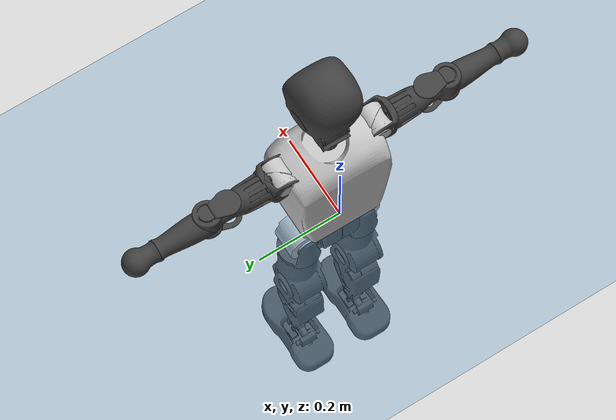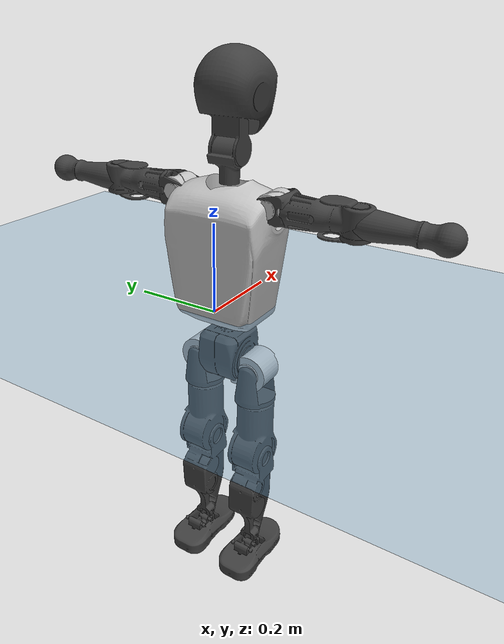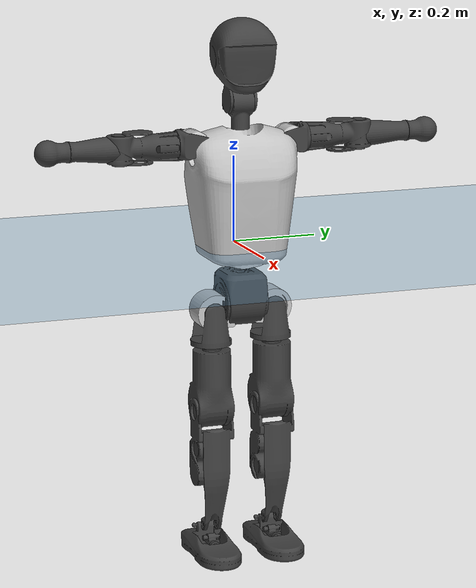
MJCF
<mujoco model="T1">
  <compiler angle="radian" assetdir="assets" balanceinertia="true" inertiafromgeom="false"/>

  <option timestep="0.005" density="1.2" viscosity="2e-05"/>

  <size nkey="1"/>

  <visual>
    <quality shadowsize="8192"/>
    <map shadowclip="0.5"/>
  </visual>

  <default>
    <default class="/">
      <joint armature="0.01" damping="0.01" frictionloss="0.1"/>
      <geom contype="0" conaffinity="0" group="1" solref="-1000 -80"/>
      <site size="0.01 0.005 0.005" group="5"/>
      <general forcelimited="true" biastype="affine" gainprm="25" biasprm="0 -25 -0.6"/>
      <default class="t1">
        <geom rgba="0.25 0.25 0.25 1"/>
        <default class="visual">
          <geom type="mesh" group="2"/>
        </default>
        <default class="collision">
          <geom group="3"/>
        </default>
        <default class="foot">
          <geom size="0.1115 0.05 0.015" type="box" condim="6" group="4" priority="1" solimp="0.015 1 0.015"/>
        </default>
        <default class="reward_collision_sphere">
          <geom group="5" rgba="1 0 0 1"/>
        </default>
      </default>
    </default>
  </default>

  <asset>
    <texture type="skybox" colorspace="auto" name="//unnamed_texture_0" builtin="gradient" rgb1="0.95 0.95 0.95" rgb2="0.95 0.95 0.95" width="100" height="600"/>
    <texture type="2d" colorspace="auto" name="texplane" builtin="checker" rgb1="0.345 0.575 0.748" rgb2="0.345 0.575 0.748" markrgb="1 1 1" width="512" height="512"/>
    <material name="MatPlane" class="/" texture="texplane" texuniform="true" texrepeat="2 2" specular="0.9"/>
    <mesh name="Trunk" class="/" file="Trunk.stl"/>
    <mesh name="H1" class="/" file="H1.stl"/>
    <mesh name="H2" class="/" file="H2.stl"/>
    <mesh name="AL1" class="/" file="AL1.stl"/>
    <mesh name="AL2" class="/" file="AL2.stl"/>
    <mesh name="AL3" class="/" file="AL3.stl"/>
    <mesh name="left_hand_link" class="/" file="left_hand_link.stl"/>
    <mesh name="AR1" class="/" file="AR1.stl"/>
    <mesh name="AR2" class="/" file="AR2.stl"/>
    <mesh name="AR3" class="/" file="AR3.stl"/>
    <mesh name="right_hand_link" class="/" file="right_hand_link.stl"/>
    <mesh name="Waist" class="/" file="Waist.stl"/>
    <mesh name="Hip_Pitch_Left" class="/" file="Hip_Pitch_Left.stl"/>
    <mesh name="Hip_Roll_Left" class="/" file="Hip_Roll_Left.stl"/>
    <mesh name="Hip_Yaw_Left" class="/" file="Hip_Yaw_Left.stl"/>
    <mesh name="Shank_Left" class="/" file="Shank_Left.stl"/>
    <mesh name="Ankle_Cross_Left" class="/" file="Ankle_Cross_Left.stl"/>
    <mesh name="left_foot_link" class="/" file="left_foot_link.stl"/>
    <mesh name="Hip_Pitch_Right" class="/" file="Hip_Pitch_Right.stl"/>
    <mesh name="Hip_Roll_Right" class="/" file="Hip_Roll_Right.stl"/>
    <mesh name="Hip_Yaw_Right" class="/" file="Hip_Yaw_Right.stl"/>
    <mesh name="Shank_Right" class="/" file="Shank_Right.stl"/>
    <mesh name="Ankle_Cross_Right" class="/" file="Ankle_Cross_Right.stl"/>
    <mesh name="right_foot_link" class="/" file="right_foot_link.stl"/>
  </asset>

  <worldbody>
    <geom name="floor" class="/" size="100 100 0.125" type="plane" group="0" material="MatPlane"/>
    <light name="toplight_shadow" class="/" pos="0 0 5" dir="0.0990148 0.0990148 -0.990148" type="directional" ambient="0.04 0.04 0.04" diffuse="0.55 0.55 0.55" specular="0.12 0.12 0.12"/>
    <light name="toplight_fill" class="/" pos="0 0 5" dir="0.0990148 0.0990148 -0.990148" type="directional" castshadow="false" ambient="0.04 0.04 0.04" diffuse="0.3 0.3 0.3" specular="0.08 0.08 0.08"/>
    <body name="trunk" childclass="t1" pos="-0.000122716 -0.000642012 0.00282986" quat="1 -1.16923e-05 5.37572e-06 -9.26032e-06">
      <inertial pos="0.0485862 -0.0037329 0.116304" quat="0.999953 0.00252004 -0.000483337 -0.00929797" mass="7.8004" diaginertia="0.0447034 0.00992703 0.0946912"/>
      <joint name="//unnamed_joint_0" type="free" armature="0" damping="0" frictionloss="0"/>
      <geom name="//unnamed_geom_1" class="visual" rgba="0.76 0.76 0.76 1" mesh="Trunk"/>
      <geom name="//unnamed_geom_2" class="collision" size="0.0662564 0.0883419 0.132513" pos="0.0518896 0 0.133831" type="box"/>
      <geom name="//unnamed_geom_3" class="reward_collision_sphere" size="0.101593" pos="0.0518896 0 0.111526"/>
      <geom name="//unnamed_geom_4" class="reward_collision_sphere" size="0.0132513" pos="0.0518896 0.0569644 0"/>
      <geom name="//unnamed_geom_5" class="reward_collision_sphere" size="0.0132513" pos="0.0518896 -0.0569644 0"/>
      <geom name="//unnamed_geom_6" class="reward_collision_sphere" size="0.0132513" pos="0.0518896 0.0717082 0.200747"/>
      <geom name="//unnamed_geom_7" class="reward_collision_sphere" size="0.0132513" pos="0.0518896 -0.0717082 0.200747"/>
      <site name="imu" pos="0.000144219 0.0131834 -0.00744594" size="0.00883419"/>
      <camera name="track" pos="0 -1.34034 0" quat="0.707107 0.707107 0 0" mode="trackcom"/>
      <camera name="ego_camera" pos="0.105509 0 0.468409" quat="-0.5 -0.5 0.5 0.5"/>
      <body name="H1" pos="0.0531599 -0.00304546 0.270035" quat="0.999999 -0.00102491 0.000294434 -0.000798492">
        <inertial pos="-0.00161193 -0.000292474 0.0655174" quat="0.761538 -0.0121713 0.00136916 0.648005" mass="0.295542" diaginertia="0.000113107 3.08549e-05 0.000256379"/>
        <joint name="AAHead_yaw" pos="0 0 0" axis="0.00384728 -0.00390678 0.999985" range="-1.53926 1.61071" armature="0.00905229" damping="0" frictionloss="0.0765117"/>
        <geom name="//unnamed_geom_8" class="visual" mesh="H1"/>
        <body name="H2" pos="-0.000560014 -0.00084976 0.0675192" quat="1 -0.000363866 -0.000675957 -0.000233334">
          <inertial pos="0.0042322 0.00291934 0.112768" quat="0.989705 0.094821 -0.0689621 -0.082075" mass="0.434859" diaginertia="0.000982474 0.00025616 0.00297145"/>
          <joint name="Head_pitch" pos="0 0 0" axis="0.0136395 -0.999906 -0.00167421" range="-1.22853 0.359094" armature="0.00870819" damping="0.00452606" frictionloss="0.0884614"/>
          <geom name="//unnamed_geom_9" class="visual" mesh="H2"/>
          <geom name="//unnamed_geom_10" class="collision" size="0.0706735" pos="0.00864827 0 0.122679"/>
          <geom name="//unnamed_geom_11" class="reward_collision_sphere" size="0.0795077" pos="0.0172965 0 0.111526"/>
        </body>
      </body>
      <body name="AL1" pos="0.0494121 0.0714388 0.241922" quat="1 5.47473e-05 0.00053735 0.000313946">
        <inertial pos="-8.26539e-05 0.0275156 -0.000236632" quat="0.498994 0.491435 -0.503323 0.506125" mass="0.348602" diaginertia="0.000622125 0.000169123 0.000490492"/>
        <joint name="Left_Shoulder_Pitch" pos="0 0 0" axis="-0.0136604 0.999907 -0.000262088" range="-3.26232 1.22466" armature="0.00746761" damping="0" frictionloss="0.0800147"/>
        <geom name="//unnamed_geom_12" class="visual" rgba="0.76 0.76 0.76 1" mesh="AL1"/>
        <body name="AL2" pos="-8.92674e-05 0.0314812 -0.00028872" quat="0.999999 0.00073105 -6.41481e-05 0.000932086">
          <inertial pos="0.0052349 0.027737 -0.000300762" quat="0.483775 0.519014 -0.480674 0.515305" mass="0.107006" diaginertia="0.000187124 4.57504e-05 0.00029218"/>
          <joint name="Left_Shoulder_Roll" pos="0 0 0" axis="-0.999987 0.00242381 -0.00447021" range="-1.57036 1.74746" armature="0.0100361" damping="0.0213171" frictionloss="0.0929772"/>
          <geom name="//unnamed_geom_13" class="visual" mesh="AL2"/>
          <body name="AL3" pos="-0.00184542 0.0389751 0.000239649" quat="0.999999 0.000216157 -0.00025917 -0.00123301">
            <inertial pos="0.00211104 0.0565377 0.00157467" quat="0.70163 0.712521 0.000494878 0.00528062" mass="0.71839" diaginertia="0.0063316 0.00180203 0.00108515"/>
            <joint name="Left_Elbow_Pitch" pos="0 0 0" axis="-0.00214305 -0.999997 -0.000707817" stiffness="0.0069931" range="-2.258 2.30845" armature="0.0100291" damping="0.00989366" frictionloss="0.0970193"/>
            <geom name="//unnamed_geom_14" class="visual" mesh="AL3"/>
            <geom name="//unnamed_geom_15" class="collision" size="0.0265026 0.0662564" pos="0 0.0335085 0" quat="0.707105 0.707108 0 0" type="cylinder"/>
            <geom name="//unnamed_geom_16" class="reward_collision_sphere" size="0.0318031"/>
            <body name="left_hand_link" pos="-0.00194853 0.100058 -0.00178628" quat="0.999999 -0.000767812 -0.000165706 0.000646183">
              <inertial pos="0.00108719 0.0762853 -0.000224532" quat="0.708203 0.706009 0.000251506 0.00014374" mass="0.220039" diaginertia="0.00406821 0.00114123 0.000359504"/>
              <joint name="Left_Elbow_Yaw" pos="0 0 0" axis="-0.0135215 0.00556951 0.999893" stiffness="0.00378267" range="-2.4835 0.0401254" armature="0.00770104" damping="0.000310743" frictionloss="0.0982152"/>
              <geom name="//unnamed_geom_17" class="visual" mesh="left_hand_link"/>
              <geom name="//unnamed_geom_18" class="collision" size="0.0265026 0.0772991" pos="0 0.0871221 0" quat="0.707105 0.707108 0 0" type="cylinder"/>
              <geom name="//unnamed_geom_19" class="reward_collision_sphere" size="0.0441709"/>
              <geom name="//unnamed_geom_20" class="reward_collision_sphere" size="0.0309197" pos="0 0.0737187 0"/>
              <geom name="//unnamed_geom_21" class="reward_collision_sphere" size="0.0309197" pos="0 0.144087 0"/>
            </body>
          </body>
        </body>
      </body>
      <body name="AR1" pos="0.0493732 -0.0675493 0.241339" quat="1 4.26202e-05 0.000390066 3.71101e-05">
        <inertial pos="-0.000468931 -0.0329904 -0.00034818" quat="0.503051 0.49521 -0.504892 0.49678" mass="0.376356" diaginertia="0.000661824 0.000170132 0.000506139"/>
        <joint name="Right_Shoulder_Pitch" pos="0 0 0" axis="-0.00225959 -0.999953 -0.0094128" range="-1.22835 3.35713" armature="0.009075" damping="0.016037" frictionloss="0.0785612"/>
        <geom name="//unnamed_geom_22" class="visual" rgba="0.76 0.76 0.76 1" mesh="AR1"/>
        <body name="AR2" pos="0.00154828 -0.0333166 -0.000189294" quat="1 9.50363e-05 -3.70714e-05 0.000132737">
          <inertial pos="0.0061971 -0.0251335 -0.000836982" quat="0.510359 0.486136 -0.515296 0.48752" mass="0.116865" diaginertia="0.000198483 4.67271e-05 0.000316564"/>
          <joint name="Right_Shoulder_Roll" pos="0 0 0" axis="-0.999964 0.00660514 -0.00524011" range="-1.72728 1.62798" armature="0.00918927" damping="0" frictionloss="0.100627"/>
          <geom name="//unnamed_geom_23" class="visual" mesh="AR2"/>
          <body name="AR3" pos="-0.00286472 -0.0412383 -0.00318116" quat="0.999999 0.000507325 -0.000511275 0.000730311">
            <inertial pos="-0.000823175 -0.0544736 -0.000720723" quat="0.702451 0.711716 0.00218542 -0.00421263" mass="0.740366" diaginertia="0.00632145 0.00176005 0.00108357"/>
            <joint name="Right_Elbow_Pitch" pos="0 0 0" axis="0.00229474 0.999997 -0.000411791" range="-2.32803 2.21477" armature="0.0090744" damping="0.00968055" frictionloss="0.087338"/>
            <geom name="//unnamed_geom_24" class="visual" mesh="AR3"/>
            <geom name="//unnamed_geom_25" class="collision" size="0.0265026 0.0662564" pos="0 -0.0335085 0" quat="0.707105 0.707108 0 0" type="cylinder"/>
            <geom name="//unnamed_geom_26" class="reward_collision_sphere" size="0.0318031"/>
            <body name="right_hand_link" pos="-0.000707964 -0.0982893 0.00090293" quat="1 -2.36037e-05 -3.13485e-05 -0.000136117">
              <inertial pos="0.0001032 -0.0732542 -0.00109556" quat="0.714021 0.70008 0.00111561 -0.00780638" mass="0.212728" diaginertia="0.00376551 0.00107464 0.000359655"/>
              <joint name="Right_Elbow_Yaw" pos="0 0 0" axis="-0.00814912 -0.0143153 0.999864" stiffness="0.000985646" range="0.0242366 2.49105" armature="0.00913464" damping="0.00762913" frictionloss="0.0927994"/>
              <geom name="//unnamed_geom_27" class="visual" mesh="right_hand_link"/>
              <geom name="//unnamed_geom_28" class="collision" size="0.0265026 0.0772991" pos="0 -0.0871221 0" quat="0.707105 0.707108 0 0" type="cylinder"/>
              <geom name="//unnamed_geom_29" class="reward_collision_sphere" size="0.0441709"/>
              <geom name="//unnamed_geom_30" class="reward_collision_sphere" size="0.0309197" pos="0 -0.0737187 0"/>
              <geom name="//unnamed_geom_31" class="reward_collision_sphere" size="0.0309197" pos="0 -0.144087 0"/>
            </body>
          </body>
        </body>
      </body>
      <body name="Waist" pos="0.0529611 -0.00219744 -0.128863" quat="0.999999 -0.000197715 -0.00166411 0.000390215">
        <inertial pos="0.000527216 -0.00380145 0.00733064" quat="0.983749 0.000620383 -0.179521 0.00309995" mass="1.8064" diaginertia="0.00257923 0.000702367 0.00790341"/>
        <joint name="Waist" pos="0 0 0" axis="-0.00710967 0.0130004 0.99989" stiffness="0.00778912" range="-1.57303 1.56728" armature="0.00909454" damping="0" frictionloss="0.0782924"/>
        <geom name="//unnamed_geom_32" class="visual" mesh="Waist"/>
        <body name="Hip_Pitch_Left" pos="0.00342113 0.0692789 0.00248365" quat="0.999999 0.0010593 -0.00074396 0.00092014">
          <inertial pos="0.000184618 -0.00575268 -0.0201876" quat="0.973873 0.226085 0.0206083 -0.00567766" mass="0.70153" diaginertia="0.000855394 0.000196999 0.00205474"/>
          <joint name="Left_Hip_Pitch" pos="0 0 0" axis="-0.00463092 0.999986 -0.00253441" range="-1.7804 1.58452" armature="0.00863119" damping="0.00595514" frictionloss="0.0944041"/>
          <geom name="//unnamed_geom_33" class="visual" rgba="0.76 0.76 0.76 1" mesh="Hip_Pitch_Left"/>
          <body name="Hip_Roll_Left" pos="0.00233632 0.00248153 -0.0200018" quat="1 -0.000455913 -8.85517e-05 -0.000599436">
            <inertial pos="-0.0013874 -0.00313132 -0.0598285" quat="0.700666 -0.00627818 -0.00735941 0.713424" mass="0.261048" diaginertia="0.000808223 0.000201234 0.000873036"/>
            <joint name="Left_Hip_Roll" pos="0 0 0" axis="-0.999972 0.00740236 0.00147" stiffness="0.00114867" range="-1.62449 0.250132" armature="0.00986946" damping="0.00835912" frictionloss="0.0925694"/>
            <geom name="//unnamed_geom_34" class="visual" mesh="Hip_Roll_Left"/>
            <geom name="//unnamed_geom_35" class="reward_collision_sphere" size="0.048588"/>
            <body name="Hip_Yaw_Left" pos="0.001179 0.00213151 -0.0892092" quat="0.999999 0.000827142 0.000743301 -0.000689117">
              <inertial pos="-0.00659709 -5.42148e-07 -0.101884" quat="0.694064 -0.0339918 -0.0300925 0.71848" mass="1.50832" diaginertia="0.0120289 0.00341538 0.00463521"/>
              <joint name="Left_Hip_Yaw" pos="0 0 0" axis="0.000502521 0.00823058 -0.999966" stiffness="0.00116077" range="-1.00958 0.961559" armature="0.00839002" damping="0.00994384" frictionloss="0.0972725"/>
              <geom name="//unnamed_geom_36" class="visual" mesh="Hip_Yaw_Left"/>
              <geom name="//unnamed_geom_37" class="collision" size="0.0441709 0.0706735" type="cylinder"/>
              <body name="Shank_Left" pos="-0.0087864 0.0016662 -0.152164" quat="1 -0.000152076 7.62572e-05 0.000163751">
                <inertial pos="-0.00242982 -0.00261199 -0.139509" quat="0.99771 0.00289736 -0.0230487 0.0635256" mass="1.16042" diaginertia="0.0166011 0.0044986 0.00317883"/>
                <joint name="Left_Knee_Pitch" pos="0 0 0" axis="0.00515255 0.999964 0.00677829" stiffness="0.0062897" range="0.0459929 2.37627" armature="0.0089281" damping="0.00936128" frictionloss="0.0837113"/>
                <geom name="//unnamed_geom_38" class="visual" mesh="Shank_Left"/>
                <geom name="//unnamed_geom_39" class="collision" size="0.0441709 0.0662564" pos="0 0 -0.133831" type="cylinder"/>
                <geom name="//unnamed_geom_40" class="reward_collision_sphere" size="0.0574222"/>
                <body name="Ankle_Cross_Left" pos="2.97217e-05 0.000835595 -0.310654" quat="0.999999 2.23054e-05 -0.000912958 0.000977118">
                  <inertial pos="-0.000282785 0.000447863 -0.011229" quat="0.443275 0.550043 0.551388 0.44377" mass="0.0512842" diaginertia="1.42015e-05 3.35584e-06 1.93424e-05"/>
                  <joint name="Left_Ankle_Pitch" pos="0 0 0" axis="0.0068599 0.999903 -0.0121224" stiffness="0.00745175" range="-0.885473 0.366629" armature="0.00868045" damping="0.0199805" frictionloss="0.0758987"/>
                  <geom name="//unnamed_geom_41" class="visual" mesh="Ankle_Cross_Left"/>
                  <body name="left_foot_link" pos="-0.00085206 0.00438506 -0.0148128" quat="1 0.000309963 3.55513e-05 -0.000133659">
                    <inertial pos="0.000775756 0.00281618 -0.0103858" quat="0.00754401 0.628503 -0.00488788 0.777755" mass="0.460261" diaginertia="0.00133667 0.000333602 0.00388653"/>
                    <joint name="Left_Ankle_Roll" pos="0 0 0" axis="-0.99988 -0.0112256 -0.0107109" range="-0.461517 0.486068" armature="0.00954472" damping="0.00938697" frictionloss="0.0928966"/>
                    <geom name="//unnamed_geom_42" class="visual" mesh="left_foot_link"/>
                    <geom name="left_foot" class="foot" size="0.104983 0.0520728 0.0132918" pos="0.00864827 0 -0.0167289"/>
                    <geom name="//unnamed_geom_44" class="reward_collision_sphere" size="0.0459378" pos="0.00864827 0 -0.0167289"/>
                    <geom name="//unnamed_geom_45" class="reward_collision_sphere" size="0.0265026" pos="0.0821586 -0.0154139 -0.0167289"/>
                    <geom name="//unnamed_geom_46" class="reward_collision_sphere" size="0.0265026" pos="-0.0605379 -0.0154139 -0.0167289"/>
                    <site name="left_foot" class="foot" pos="0.00864827 0 -0.0167289" size="0.00883419"/>
                  </body>
                </body>
              </body>
            </body>
          </body>
        </body>
        <body name="Hip_Pitch_Right" pos="0.00268321 -0.0713814 -0.00246159" quat="1 -0.000101396 0.000105729 0.000212278">
          <inertial pos="-0.00215853 0.00444223 -0.0199823" quat="0.974987 -0.22211 0.00757211 0.00302702" mass="0.672845" diaginertia="0.000846013 0.000192658 0.00210418"/>
          <joint name="Right_Hip_Pitch" pos="0 0 0" axis="-0.0058958 -0.999981 -0.00160381" range="-1.57695 1.74648" armature="0.00940644" damping="0.00235481" frictionloss="0.0790879"/>
          <geom name="//unnamed_geom_47" class="visual" rgba="0.76 0.76 0.76 1" mesh="Hip_Pitch_Right"/>
          <body name="Hip_Roll_Right" pos="-0.000508729 -0.00241023 -0.0222436" quat="1 -0.00038199 -0.000115225 -0.000192469">
            <inertial pos="0.00117354 -0.00263368 -0.0626756" quat="0.704613 0.00273505 -0.0145383 0.709438" mass="0.258132" diaginertia="0.000816935 0.000200716 0.000873904"/>
            <joint name="Right_Hip_Roll" pos="0 0 0" axis="-0.999999 0.000291423 0.00152542" range="-0.179997 1.57282" armature="0.0086412" damping="0.00954182" frictionloss="0.0758481"/>
            <geom name="//unnamed_geom_48" class="visual" mesh="Hip_Roll_Right"/>
            <geom name="//unnamed_geom_49" class="reward_collision_sphere" size="0.048588"/>
            <body name="Hip_Yaw_Right" pos="0.00337128 0.000796923 -0.089522" quat="0.999999 0.000259051 0.000592366 0.00136567">
              <inertial pos="-0.00638832 -0.00200579 -0.0977089" quat="0.711042 -0.0341971 -0.0357501 0.701407" mass="1.51322" diaginertia="0.0121608 0.00334606 0.0043779"/>
              <joint name="Right_Hip_Yaw" pos="0 0 0" axis="0.013085 -0.0103885 -0.99986" stiffness="0.000263568" range="-1.0541 1.06057" armature="0.00901163" damping="0.014932" frictionloss="0.0878118"/>
              <geom name="//unnamed_geom_50" class="visual" mesh="Hip_Yaw_Right"/>
              <geom name="//unnamed_geom_51" class="collision" size="0.0441709 0.0706735" type="cylinder"/>
              <body name="Shank_Right" pos="-0.0124906 0.00142752 -0.149841" quat="1 0.000299307 4.21392e-05 0.0001797">
                <inertial pos="-0.00602265 -0.000164591 -0.138843" quat="0.999177 0.000469686 -0.0249787 -0.031955" mass="1.18941" diaginertia="0.016141 0.00449207 0.00327835"/>
                <joint name="Right_Knee_Pitch" pos="0 0 0" axis="-9.74673e-05 -1 -0.000442409" range="-2.29728 0.0272967" armature="0.00881589" damping="0.0106165" frictionloss="0.0882415"/>
                <geom name="//unnamed_geom_52" class="visual" mesh="Shank_Right"/>
                <geom name="//unnamed_geom_53" class="collision" size="0.0441709 0.0662564" pos="0 0 -0.133831" type="cylinder"/>
                <geom name="//unnamed_geom_54" class="reward_collision_sphere" size="0.0574222"/>
                <body name="Ankle_Cross_Right" pos="-0.000262081 0.000413914 -0.31175" quat="0.999999 -0.000212784 -0.00106074 -0.000868837">
                  <inertial pos="-0.00316409 0.00102116 -0.0111969" quat="0.434175 0.556974 0.552584 0.442632" mass="0.0485567" diaginertia="1.32854e-05 3.47406e-06 1.84313e-05"/>
                  <joint name="Right_Ankle_Pitch" pos="0 0 0" axis="-0.0119099 -0.999914 0.00553132" range="-0.292262 0.892681" armature="0.0087169" damping="0" frictionloss="0.075945"/>
                  <geom name="//unnamed_geom_55" class="visual" mesh="Ankle_Cross_Right"/>
                  <body name="right_foot_link" pos="0.00161842 -0.00199891 -0.0123704" quat="1 0.000209862 0.000167972 -0.000623073">
                    <inertial pos="-0.00163878 -0.00310537 -0.0102559" quat="0.000573629 0.612483 -0.00932925 0.790428" mass="0.476524" diaginertia="0.00130823 0.000322008 0.00364071"/>
                    <joint name="Right_Ankle_Roll" pos="0 0 0" axis="-1 0.000207206 3.78825e-05" stiffness="0.00700173" range="-0.429809 0.420981" armature="0.00975712" damping="0.0170932" frictionloss="0.0879255"/>
                    <geom name="//unnamed_geom_56" class="visual" mesh="right_foot_link"/>
                    <geom name="right_foot" class="foot" size="0.100449 0.0460578 0.0132389" pos="0.00864827 0 -0.0167289"/>
                    <geom name="//unnamed_geom_58" class="reward_collision_sphere" size="0.0353367"/>
                    <geom name="//unnamed_geom_59" class="reward_collision_sphere" size="0.0265026" pos="0.00864827 0 -0.0167289"/>
                    <geom name="//unnamed_geom_60" class="reward_collision_sphere" size="0.0265026" pos="0.0821586 0.0154139 -0.0167289"/>
                    <geom name="//unnamed_geom_61" class="reward_collision_sphere" size="0.0265026" pos="-0.0605379 0.0154139 -0.0167289"/>
                    <site name="right_foot" class="foot" pos="0.00864827 0 -0.0167289" size="0.00883419"/>
                  </body>
                </body>
              </body>
            </body>
          </body>
        </body>
      </body>
    </body>
  </worldbody>

  <contact>
    <pair class="/" geom1="floor" geom2="left_foot" name="//unnamed_contact_0"/>
    <pair class="/" geom1="floor" geom2="right_foot" name="//unnamed_contact_1"/>
  </contact>

  <actuator>
    <general name="AAHead_yaw" class="/" joint="AAHead_yaw" forcerange="-6.83466 6.83466" gainprm="21.8788" biasprm="0 -21.8788 -0.481937"/>
    <general name="Head_pitch" class="/" joint="Head_pitch" forcerange="-6.8362 6.8362" gainprm="21.8788" biasprm="0 -21.8788 -0.481937"/>
    <general name="Left_Shoulder_Pitch" class="/" joint="Left_Shoulder_Pitch" forcerange="-14.9297 14.9297" gainprm="21.8788" biasprm="0 -21.8788 -0.481937"/>
    <general name="Left_Shoulder_Roll" class="/" joint="Left_Shoulder_Roll" forcerange="-15.2468 15.2468" gainprm="21.8788" biasprm="0 -21.8788 -0.481937"/>
    <general name="Left_Elbow_Pitch" class="/" joint="Left_Elbow_Pitch" forcerange="-17.367 17.367" gainprm="21.8788" biasprm="0 -21.8788 -0.481937"/>
    <general name="Left_Elbow_Yaw" class="/" joint="Left_Elbow_Yaw" forcerange="-14.3411 14.3411" gainprm="21.8788" biasprm="0 -21.8788 -0.481937"/>
    <general name="Right_Shoulder_Pitch" class="/" joint="Right_Shoulder_Pitch" forcerange="-14.7187 14.7187" gainprm="21.8788" biasprm="0 -21.8788 -0.481937"/>
    <general name="Right_Shoulder_Roll" class="/" joint="Right_Shoulder_Roll" forcerange="-15.8691 15.8691" gainprm="21.8788" biasprm="0 -21.8788 -0.481937"/>
    <general name="Right_Elbow_Pitch" class="/" joint="Right_Elbow_Pitch" forcerange="-17.3033 17.3033" gainprm="21.8788" biasprm="0 -21.8788 -0.481937"/>
    <general name="Right_Elbow_Yaw" class="/" joint="Right_Elbow_Yaw" forcerange="-16.7812 16.7812" gainprm="21.8788" biasprm="0 -21.8788 -0.481937"/>
    <general name="Waist" class="/" joint="Waist" forcerange="-27.089 27.089" gainprm="21.8788" biasprm="0 -21.8788 -0.481937"/>
    <general name="Left_Hip_Pitch" class="/" joint="Left_Hip_Pitch" forcerange="-38.2518 38.2518" gainprm="21.8788" biasprm="0 -21.8788 -0.481937"/>
    <general name="Left_Hip_Roll" class="/" joint="Left_Hip_Roll" forcerange="-29.0624 29.0624" gainprm="21.8788" biasprm="0 -21.8788 -0.481937"/>
    <general name="Left_Hip_Yaw" class="/" joint="Left_Hip_Yaw" forcerange="-24.758 24.758" gainprm="21.8788" biasprm="0 -21.8788 -0.481937"/>
    <general name="Left_Knee_Pitch" class="/" joint="Left_Knee_Pitch" forcerange="-58.3321 58.3321" gainprm="21.8788" biasprm="0 -21.8788 -0.481937"/>
    <general name="Left_Ankle_Pitch" class="/" joint="Left_Ankle_Pitch" forcerange="-16.8207 16.8207" gainprm="21.8788" biasprm="0 -21.8788 -0.481937"/>
    <general name="Left_Ankle_Roll" class="/" joint="Left_Ankle_Roll" forcerange="-13.6574 13.6574" gainprm="21.8788" biasprm="0 -21.8788 -0.481937"/>
    <general name="Right_Hip_Pitch" class="/" joint="Right_Hip_Pitch" forcerange="-39.0432 39.0432" gainprm="21.8788" biasprm="0 -21.8788 -0.481937"/>
    <general name="Right_Hip_Roll" class="/" joint="Right_Hip_Roll" forcerange="-24.0645 24.0645" gainprm="21.8788" biasprm="0 -21.8788 -0.481937"/>
    <general name="Right_Hip_Yaw" class="/" joint="Right_Hip_Yaw" forcerange="-24.1759 24.1759" gainprm="21.8788" biasprm="0 -21.8788 -0.481937"/>
    <general name="Right_Knee_Pitch" class="/" joint="Right_Knee_Pitch" forcerange="-58.3507 58.3507" gainprm="21.8788" biasprm="0 -21.8788 -0.481937"/>
    <general name="Right_Ankle_Pitch" class="/" joint="Right_Ankle_Pitch" forcerange="-19.3993 19.3993" gainprm="21.8788" biasprm="0 -21.8788 -0.481937"/>
    <general name="Right_Ankle_Roll" class="/" joint="Right_Ankle_Roll" forcerange="-12.1139 12.1139" gainprm="21.8788" biasprm="0 -21.8788 -0.481937"/>
  </actuator>

  <sensor>
    <gyro site="imu" name="imu_angular_velocity"/>
    <velocimeter site="imu" name="imu_linear_velocity"/>
    <framelinvel objtype="site" objname="left_foot" name="left_foot_global_linear_velocity"/>
    <framelinvel objtype="site" objname="right_foot" name="right_foot_global_linear_velocity"/>
  </sensor>

  <keyframe>
    <key name="home" qpos="0 0 0.6385 1 0 0 0 0 0 0 1.4 0 -0.4 0 -1.4 0 0.4 0 -0.4 0 0 0.8 -0.4 0 0.4 0 0 -0.8 0.4 0"/>
  </keyframe>
</mujoco>
